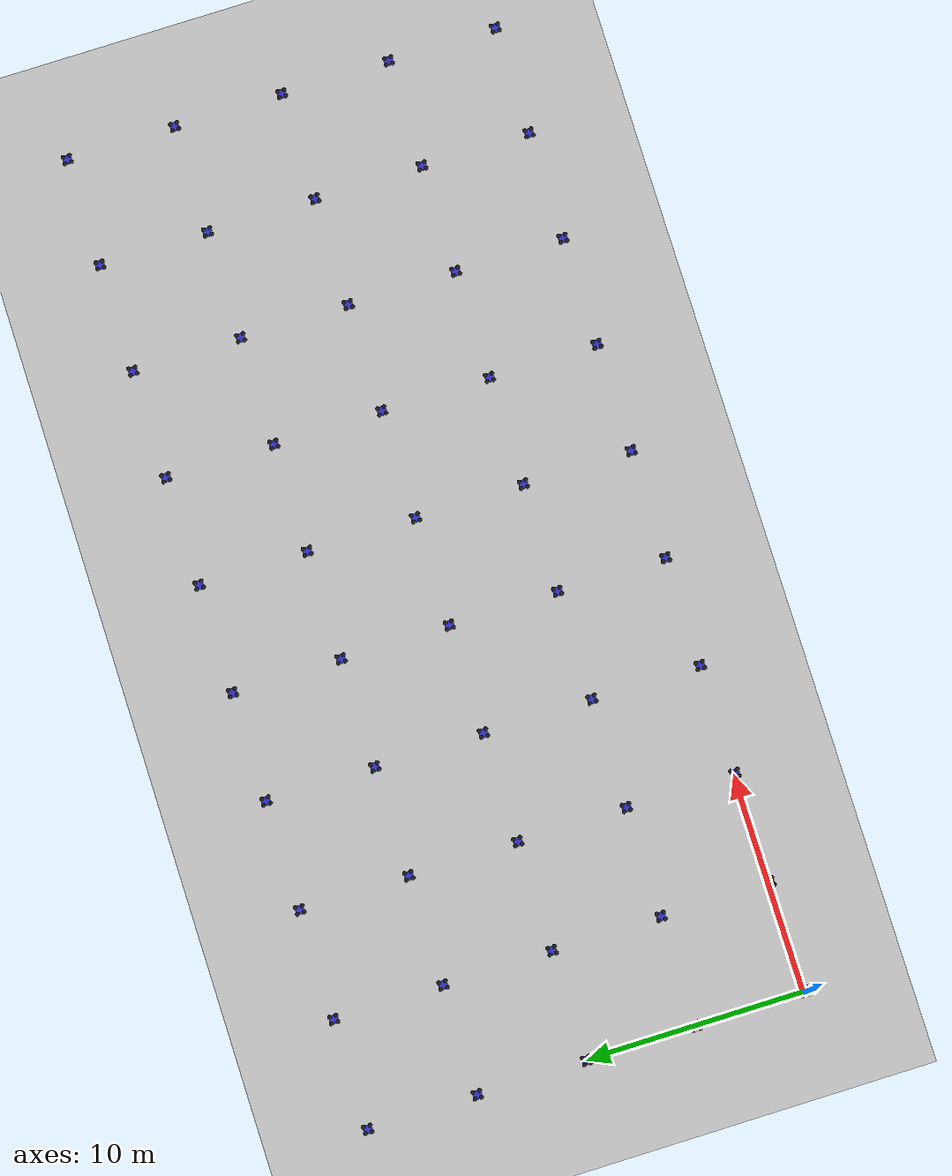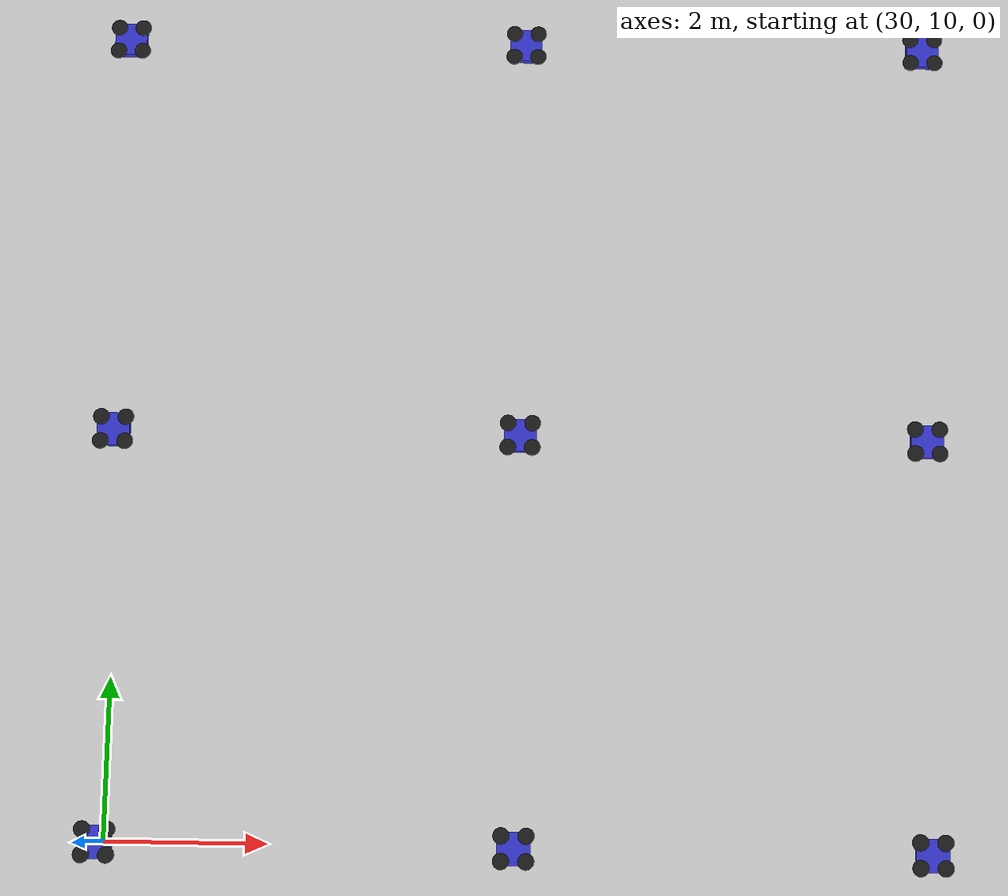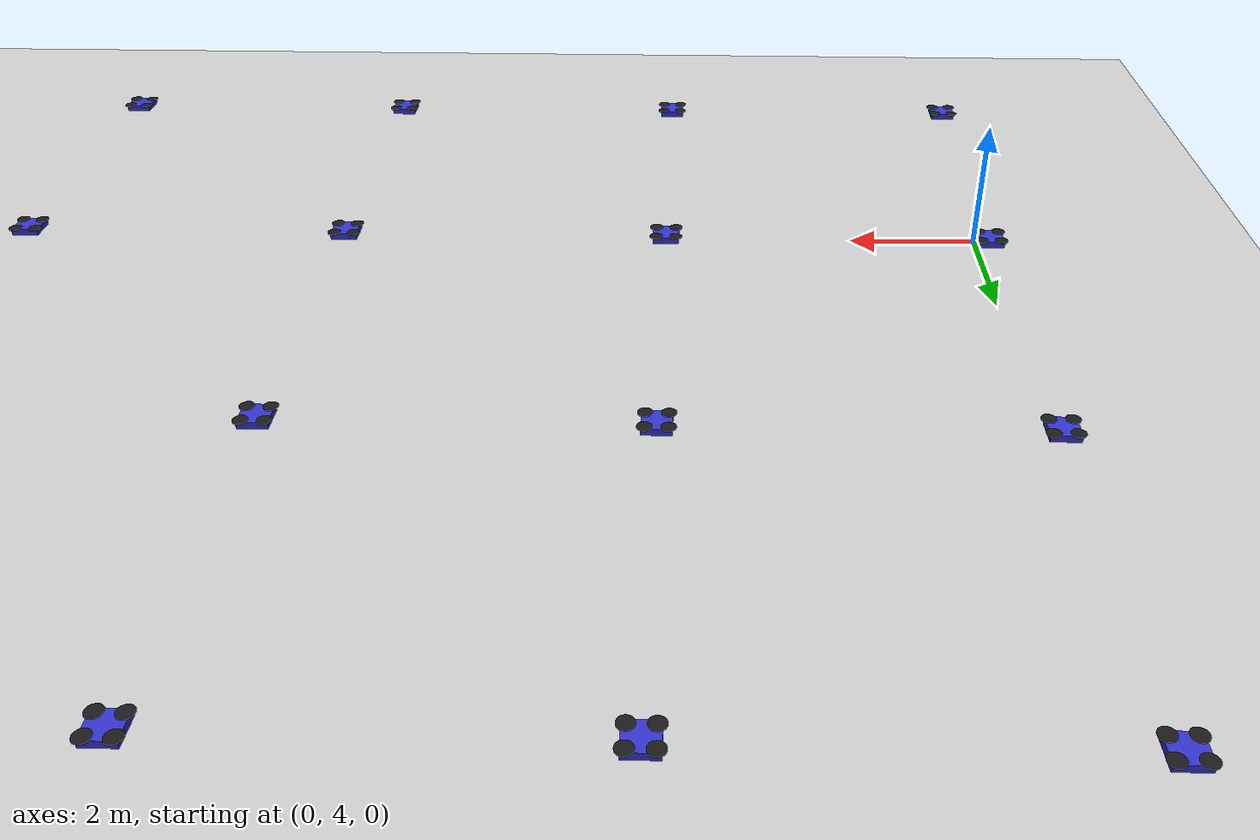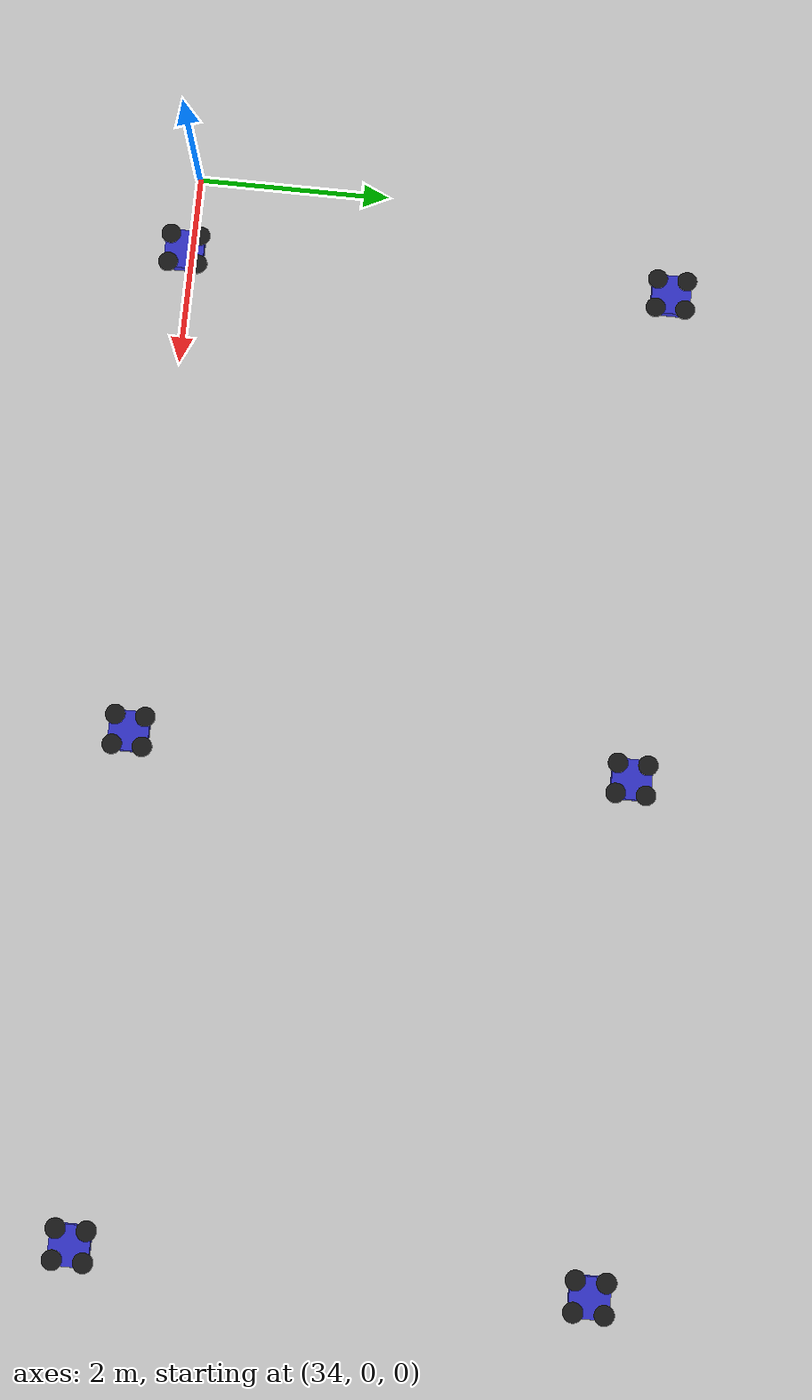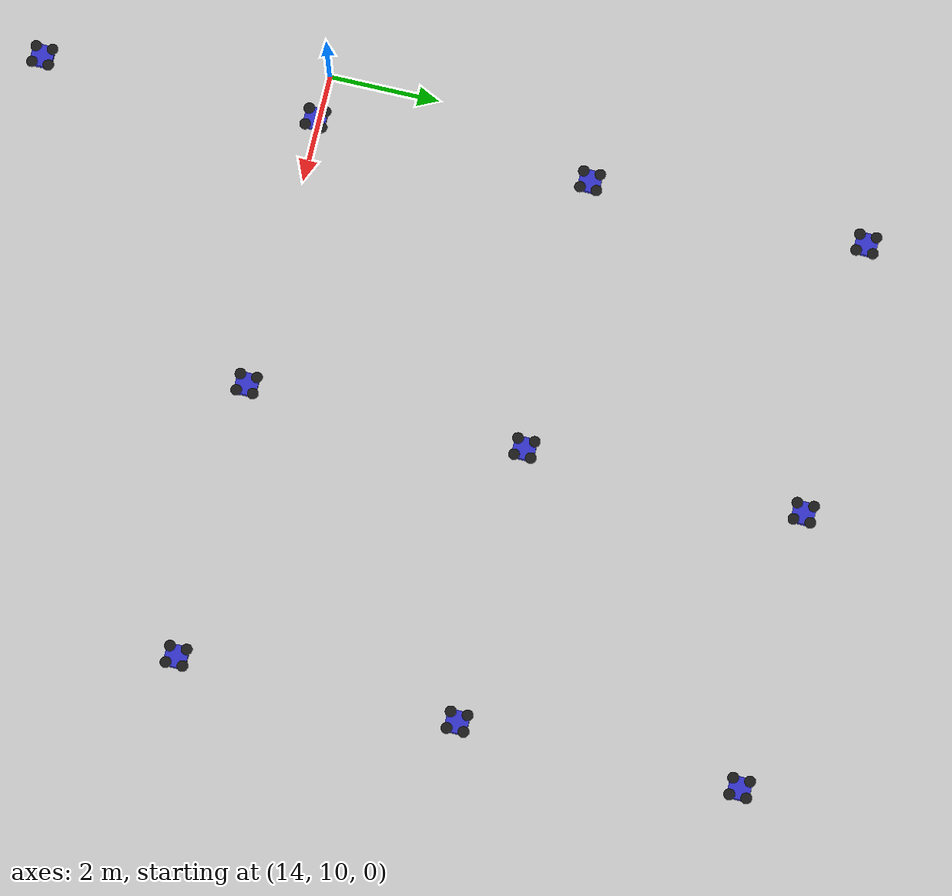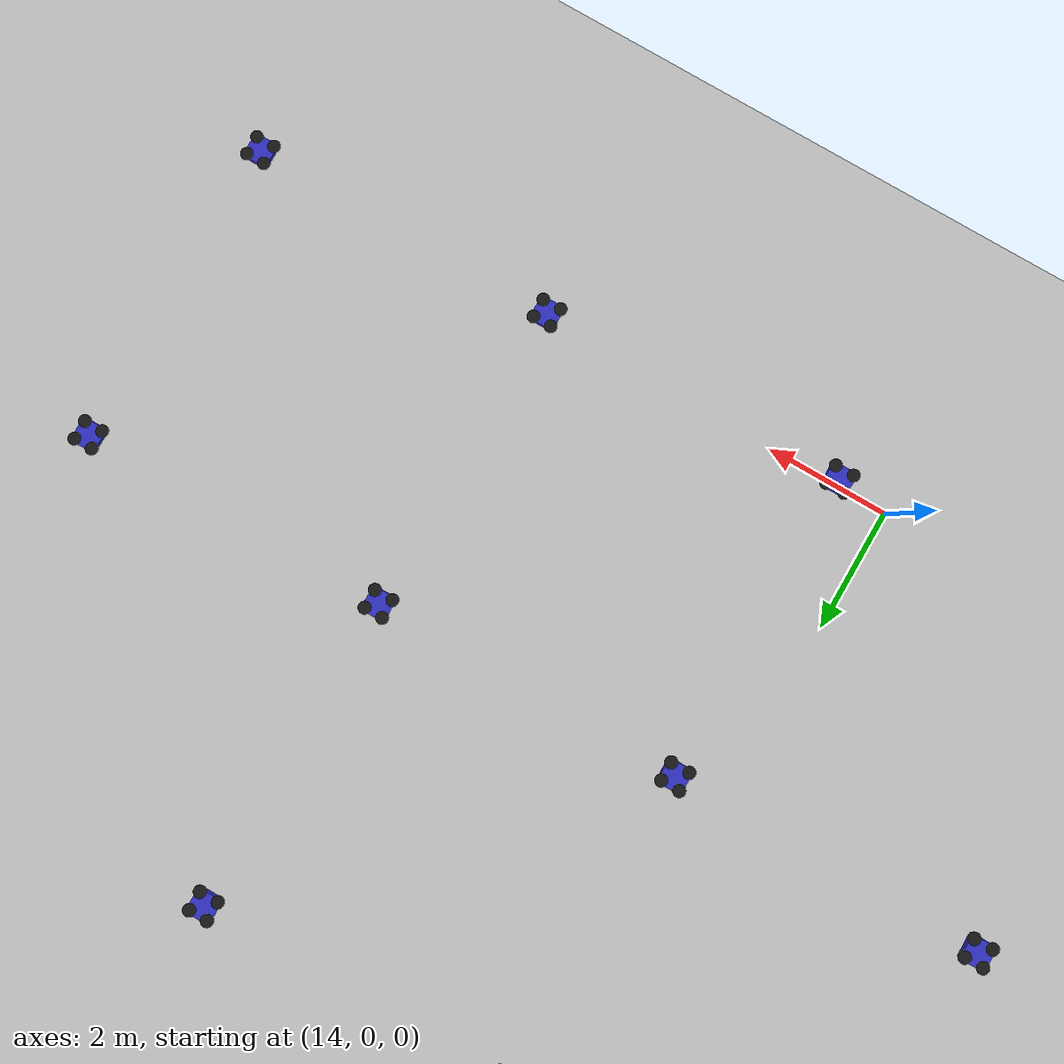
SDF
<?xml version="1.0"?>
<sdf version="1.6">
  <world name="euler_swarm">
    <physics type="ode">
      <max_step_size>0.001</max_step_size>
      <real_time_factor>1</real_time_factor>
      <real_time_update_rate>1000</real_time_update_rate>
    </physics>

    <include>
      <uri>model://sun</uri>
    </include>

    <include>
      <uri>model://ground_plane</uri>
    </include>

    <model name="drone_00"><pose>0 0 0.5 0 0 0</pose><include><uri>model://euler_drone</uri></include></model>
    <model name="drone_01"><pose>5 0 0.5 0 0 0</pose><include><uri>model://euler_drone</uri></include></model>
    <model name="drone_02"><pose>10 0 0.5 0 0 0</pose><include><uri>model://euler_drone</uri></include></model>
    <model name="drone_03"><pose>15 0 0.5 0 0 0</pose><include><uri>model://euler_drone</uri></include></model>
    <model name="drone_04"><pose>20 0 0.5 0 0 0</pose><include><uri>model://euler_drone</uri></include></model>
    <model name="drone_05"><pose>0 5 0.5 0 0 0</pose><include><uri>model://euler_drone</uri></include></model>
    <model name="drone_06"><pose>5 5 0.5 0 0 0</pose><include><uri>model://euler_drone</uri></include></model>
    <model name="drone_07"><pose>10 5 0.5 0 0 0</pose><include><uri>model://euler_drone</uri></include></model>
    <model name="drone_08"><pose>15 5 0.5 0 0 0</pose><include><uri>model://euler_drone</uri></include></model>
    <model name="drone_09"><pose>20 5 0.5 0 0 0</pose><include><uri>model://euler_drone</uri></include></model>
    <model name="drone_10"><pose>0 10 0.5 0 0 0</pose><include><uri>model://euler_drone</uri></include></model>
    <model name="drone_11"><pose>5 10 0.5 0 0 0</pose><include><uri>model://euler_drone</uri></include></model>
    <model name="drone_12"><pose>10 10 0.5 0 0 0</pose><include><uri>model://euler_drone</uri></include></model>
    <model name="drone_13"><pose>15 10 0.5 0 0 0</pose><include><uri>model://euler_drone</uri></include></model>
    <model name="drone_14"><pose>20 10 0.5 0 0 0</pose><include><uri>model://euler_drone</uri></include></model>
    <model name="drone_15"><pose>0 15 0.5 0 0 0</pose><include><uri>model://euler_drone</uri></include></model>
    <model name="drone_16"><pose>5 15 0.5 0 0 0</pose><include><uri>model://euler_drone</uri></include></model>
    <model name="drone_17"><pose>10 15 0.5 0 0 0</pose><include><uri>model://euler_drone</uri></include></model>
    <model name="drone_18"><pose>15 15 0.5 0 0 0</pose><include><uri>model://euler_drone</uri></include></model>
    <model name="drone_19"><pose>20 15 0.5 0 0 0</pose><include><uri>model://euler_drone</uri></include></model>
    <model name="drone_20"><pose>0 20 0.5 0 0 0</pose><include><uri>model://euler_drone</uri></include></model>
    <model name="drone_21"><pose>5 20 0.5 0 0 0</pose><include><uri>model://euler_drone</uri></include></model>
    <model name="drone_22"><pose>10 20 0.5 0 0 0</pose><include><uri>model://euler_drone</uri></include></model>
    <model name="drone_23"><pose>15 20 0.5 0 0 0</pose><include><uri>model://euler_drone</uri></include></model>
    <model name="drone_24"><pose>20 20 0.5 0 0 0</pose><include><uri>model://euler_drone</uri></include></model>
    <model name="drone_25"><pose>25 0 0.5 0 0 0</pose><include><uri>model://euler_drone</uri></include></model>
    <model name="drone_26"><pose>30 0 0.5 0 0 0</pose><include><uri>model://euler_drone</uri></include></model>
    <model name="drone_27"><pose>35 0 0.5 0 0 0</pose><include><uri>model://euler_drone</uri></include></model>
    <model name="drone_28"><pose>40 0 0.5 0 0 0</pose><include><uri>model://euler_drone</uri></include></model>
    <model name="drone_29"><pose>45 0 0.5 0 0 0</pose><include><uri>model://euler_drone</uri></include></model>
    <model name="drone_30"><pose>25 5 0.5 0 0 0</pose><include><uri>model://euler_drone</uri></include></model>
    <model name="drone_31"><pose>30 5 0.5 0 0 0</pose><include><uri>model://euler_drone</uri></include></model>
    <model name="drone_32"><pose>35 5 0.5 0 0 0</pose><include><uri>model://euler_drone</uri></include></model>
    <model name="drone_33"><pose>40 5 0.5 0 0 0</pose><include><uri>model://euler_drone</uri></include></model>
    <model name="drone_34"><pose>45 5 0.5 0 0 0</pose><include><uri>model://euler_drone</uri></include></model>
    <model name="drone_35"><pose>25 10 0.5 0 0 0</pose><include><uri>model://euler_drone</uri></include></model>
    <model name="drone_36"><pose>30 10 0.5 0 0 0</pose><include><uri>model://euler_drone</uri></include></model>
    <model name="drone_37"><pose>35 10 0.5 0 0 0</pose><include><uri>model://euler_drone</uri></include></model>
    <model name="drone_38"><pose>40 10 0.5 0 0 0</pose><include><uri>model://euler_drone</uri></include></model>
    <model name="drone_39"><pose>45 10 0.5 0 0 0</pose><include><uri>model://euler_drone</uri></include></model>
    <model name="drone_40"><pose>25 15 0.5 0 0 0</pose><include><uri>model://euler_drone</uri></include></model>
    <model name="drone_41"><pose>30 15 0.5 0 0 0</pose><include><uri>model://euler_drone</uri></include></model>
    <model name="drone_42"><pose>35 15 0.5 0 0 0</pose><include><uri>model://euler_drone</uri></include></model>
    <model name="drone_43"><pose>40 15 0.5 0 0 0</pose><include><uri>model://euler_drone</uri></include></model>
    <model name="drone_44"><pose>45 15 0.5 0 0 0</pose><include><uri>model://euler_drone</uri></include></model>
    <model name="drone_45"><pose>25 20 0.5 0 0 0</pose><include><uri>model://euler_drone</uri></include></model>
    <model name="drone_46"><pose>30 20 0.5 0 0 0</pose><include><uri>model://euler_drone</uri></include></model>
    <model name="drone_47"><pose>35 20 0.5 0 0 0</pose><include><uri>model://euler_drone</uri></include></model>
    <model name="drone_48"><pose>40 20 0.5 0 0 0</pose><include><uri>model://euler_drone</uri></include></model>
    <model name="drone_49"><pose>45 20 0.5 0 0 0</pose><include><uri>model://euler_drone</uri></include></model>

    <gui fullscreen="0">
      <camera name="user_camera">
        <pose>25 -30 40 0 0.6 1.57</pose>
      </camera>
    </gui>
  </world>
</sdf>

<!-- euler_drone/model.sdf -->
<sdf version="1.6">
  <model name="euler_drone">
    <static>false</static>

    <link name="base_link">
      <pose>0 0 0.1 0 0 0</pose>
      <inertial>
        <mass>1.5</mass>
        <inertia>
          <ixx>0.029</ixx><ixy>0</ixy><ixz>0</ixz>
          <iyy>0.029</iyy><iyz>0</iyz>
          <izz>0.055</izz>
        </inertia>
      </inertial>

      <collision name="body_collision">
        <geometry>
          <box><size>0.4 0.4 0.1</size></box>
        </geometry>
      </collision>

      <visual name="body_visual">
        <geometry>
          <box><size>0.4 0.4 0.1</size></box>
        </geometry>
        <material>
          <ambient>0.2 0.2 0.8 1</ambient>
          <diffuse>0.2 0.2 0.8 1</diffuse>
        </material>
      </visual>

      <sensor name="imu" type="imu">
        <always_on>true</always_on>
        <update_rate>100</update_rate>
        <imu>
          <angular_velocity>
            <x><noise type="gaussian"><mean>0</mean><stddev>0.01</stddev></noise></x>
            <y><noise type="gaussian"><mean>0</mean><stddev>0.01</stddev></noise></y>
            <z><noise type="gaussian"><mean>0</mean><stddev>0.01</stddev></noise></z>
          </angular_velocity>
          <linear_acceleration>
            <x><noise type="gaussian"><mean>0</mean><stddev>0.1</stddev></noise></x>
            <y><noise type="gaussian"><mean>0</mean><stddev>0.1</stddev></noise></y>
            <z><noise type="gaussian"><mean>0</mean><stddev>0.1</stddev></noise></z>
          </linear_acceleration>
        </imu>
      </sensor>

      <sensor name="gps" type="gps">
        <always_on>true</always_on>
        <update_rate>10</update_rate>
        <gps>
          <position_sensing>
            <horizontal><noise type="gaussian"><mean>0</mean><stddev>0.5</stddev></noise></horizontal>
            <vertical><noise type="gaussian"><mean>0</mean><stddev>1.0</stddev></noise></vertical>
          </position_sensing>
        </gps>
      </sensor>
    </link>

    <link name="rotor_0">
      <pose>0.15 0.15 0.15 0 0 0</pose>
      <inertial><mass>0.02</mass></inertial>
      <visual name="rotor_visual">
        <geometry><cylinder><radius>0.1</radius><length>0.01</length></cylinder></geometry>
        <material><ambient>0.1 0.1 0.1 1</ambient></material>
      </visual>
    </link>
    <joint name="rotor_0_joint" type="revolute">
      <parent>base_link</parent><child>rotor_0</child>
      <axis><xyz>0 0 1</xyz></axis>
    </joint>

    <link name="rotor_1">
      <pose>-0.15 0.15 0.15 0 0 0</pose>
      <inertial><mass>0.02</mass></inertial>
      <visual name="rotor_visual">
        <geometry><cylinder><radius>0.1</radius><length>0.01</length></cylinder></geometry>
        <material><ambient>0.1 0.1 0.1 1</ambient></material>
      </visual>
    </link>
    <joint name="rotor_1_joint" type="revolute">
      <parent>base_link</parent><child>rotor_1</child>
      <axis><xyz>0 0 1</xyz></axis>
    </joint>

    <link name="rotor_2">
      <pose>-0.15 -0.15 0.15 0 0 0</pose>
      <inertial><mass>0.02</mass></inertial>
      <visual name="rotor_visual">
        <geometry><cylinder><radius>0.1</radius><length>0.01</length></cylinder></geometry>
        <material><ambient>0.1 0.1 0.1 1</ambient></material>
      </visual>
    </link>
    <joint name="rotor_2_joint" type="revolute">
      <parent>base_link</parent><child>rotor_2</child>
      <axis><xyz>0 0 1</xyz></axis>
    </joint>

    <link name="rotor_3">
      <pose>0.15 -0.15 0.15 0 0 0</pose>
      <inertial><mass>0.02</mass></inertial>
      <visual name="rotor_visual">
        <geometry><cylinder><radius>0.1</radius><length>0.01</length></cylinder></geometry>
        <material><ambient>0.1 0.1 0.1 1</ambient></material>
      </visual>
    </link>
    <joint name="rotor_3_joint" type="revolute">
      <parent>base_link</parent><child>rotor_3</child>
      <axis><xyz>0 0 1</xyz></axis>
    </joint>

    <plugin name="euler_swarm_plugin" filename="libeuler_gazebo_plugin.so">
      <drone_id>0</drone_id>
      <broadcast_port>15560</broadcast_port>
      <update_rate>10</update_rate>
    </plugin>
  </model>
</sdf>
